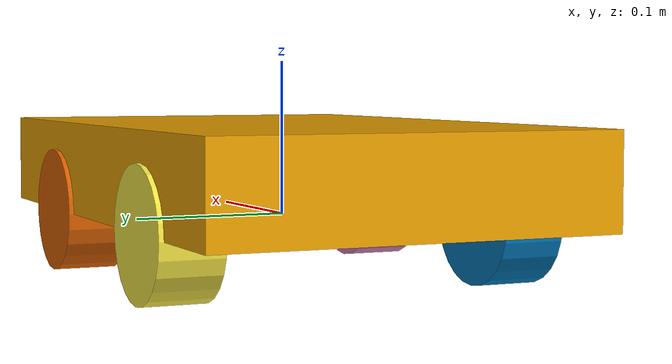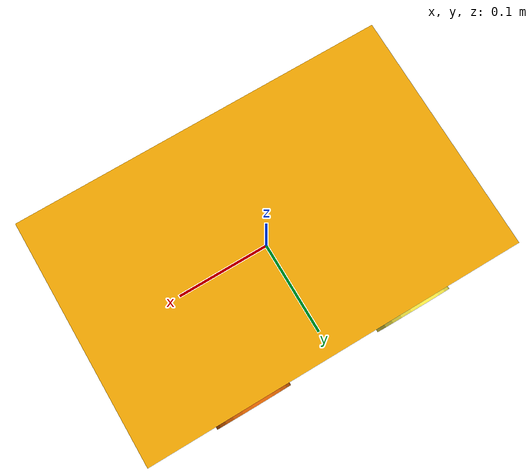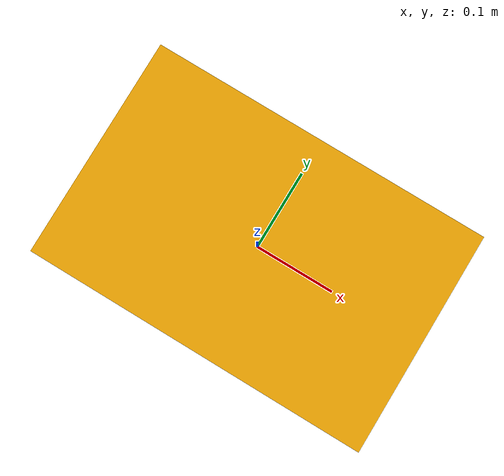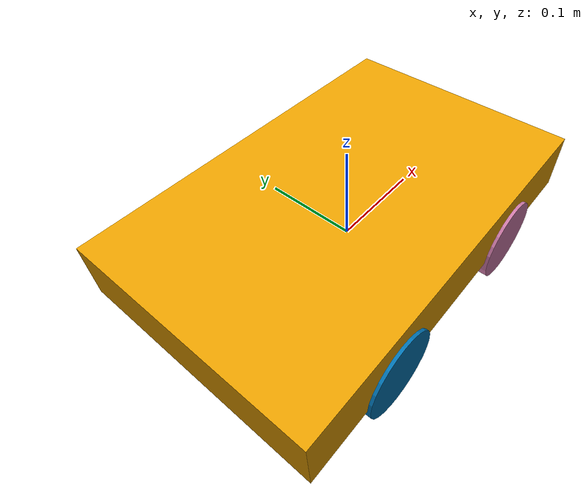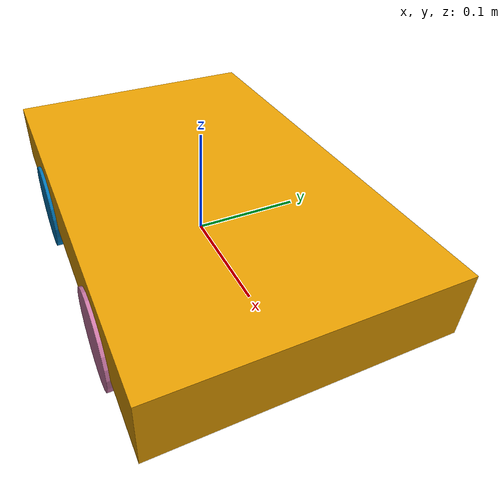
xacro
<?xml version="1.0"?>
<robot name="capstone_vehicle" xmlns:xacro="http://www.ros.org/wiki/xacro">

  <xacro:property name="plate_x" value="0.392"/>
  <xacro:property name="plate_y" value="0.254"/>
  <xacro:property name="wheel_base"  value="0.182"/>  <!-- 전후 휠 중심 간 -->
  <xacro:property name="wheel_track" value="0.220"/>  <!-- 좌우 휠 중심 간 -->
  <xacro:property name="wheel_radius" value="0.041"/>
  <xacro:property name="wheel_width" value="0.04"/>

  <link name="base_link">
    <visual>
      <origin xyz="0 0 0.03" rpy="0 0 0"/>
      <geometry>
        <box size="${plate_x} ${plate_y} 0.06"/>
      </geometry>
    </visual>
  </link>

  <joint name="laser_joint" type="fixed">
    <parent link="base_link"/>
    <child link="laser"/>
    <origin xyz="0.10 0 0.11" rpy="0 0 0"/>
  </joint>
  <link name="laser"/>

  <!-- IMU 는 LiDAR 와 동일 위치에 부착. 자이로는 위치 무관이므로 yaw 측정 OK. -->
  <joint name="imu_joint" type="fixed">
    <parent link="base_link"/>
    <child link="imu_link"/>
    <origin xyz="0.10 0 0.11" rpy="0 0 0"/>
  </joint>
  <link name="imu_link"/>

  <xacro:macro name="wheel" params="name x y">
    <joint name="${name}_joint" type="fixed">
      <parent link="base_link"/>
      <child link="${name}"/>
      <origin xyz="${x} ${y} 0" rpy="${pi/2} 0 0"/>
    </joint>
    <link name="${name}">
      <visual>
        <geometry>
          <cylinder radius="${wheel_radius}" length="${wheel_width}"/>
        </geometry>
      </visual>
    </link>
  </xacro:macro>

  <!-- A=RL, B=RR, C=FL, D=FR (CLAUDE.md 3절) -->
  <xacro:wheel name="wheel_A_rl" x="-${wheel_base/2}" y=" ${wheel_track/2}"/>
  <xacro:wheel name="wheel_B_rr" x="-${wheel_base/2}" y="-${wheel_track/2}"/>
  <xacro:wheel name="wheel_C_fl" x=" ${wheel_base/2}" y=" ${wheel_track/2}"/>
  <xacro:wheel name="wheel_D_fr" x=" ${wheel_base/2}" y="-${wheel_track/2}"/>

</robot>
